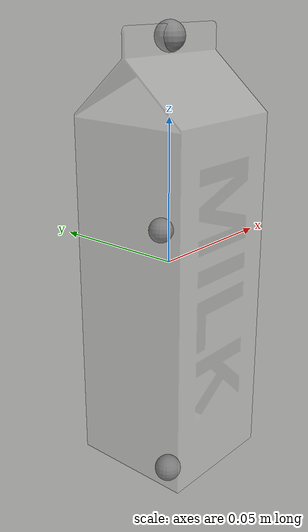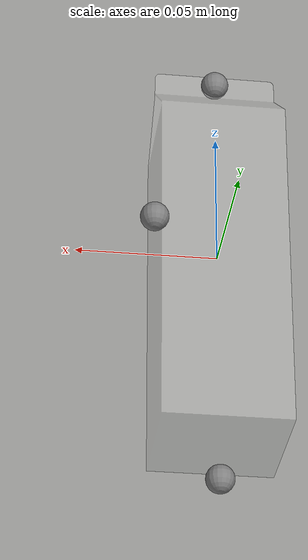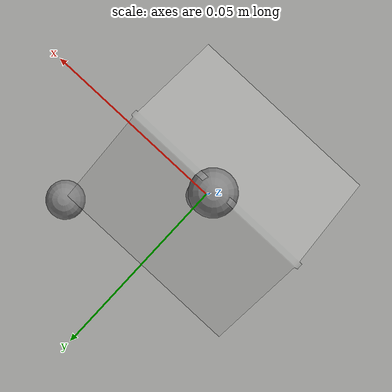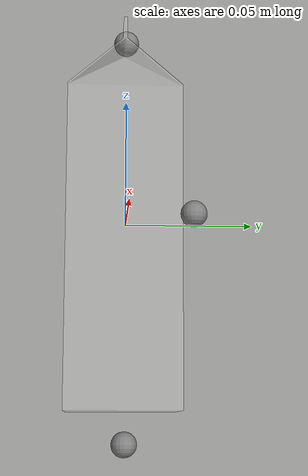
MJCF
<!-- sample of a general object defined in mujoco -->
<mujoco model="milk">
	<asset>
		<mesh file="meshes/milk.stl" name="milk_mesh" scale="0.9 0.9 0.9"/>
		<texture file="../textures/ceramic.png" name="tex-ceramic"/>
		<material name="ceramic" reflectance="0.5" texrepeat="1 1" texture="tex-ceramic" texuniform="true"/>
	</asset>
	<worldbody>
		<body>
			<body name="visual">
				<geom pos="0 0 0" mesh="milk_mesh" type="mesh" rgba="0.8 0.8 0.8 0.3"  conaffinity="0" contype="0"  group="0" mass="0.0001"/>
				<geom pos="0 0 0" mesh="milk_mesh" type="mesh" rgba="0.8 0.8 0.8 0.3"  conaffinity="0" contype="0"  group="1" mass="0.0001"/>
			</body>
			<site pos="0 0 -0.085" name="bottom_site"/>
			<site pos="0 0 0.075" name="top_site"/>
			<site pos="0.025 0.025 0" name="horizontal_radius_site"/>
		</body>
	</worldbody>
</mujoco>
